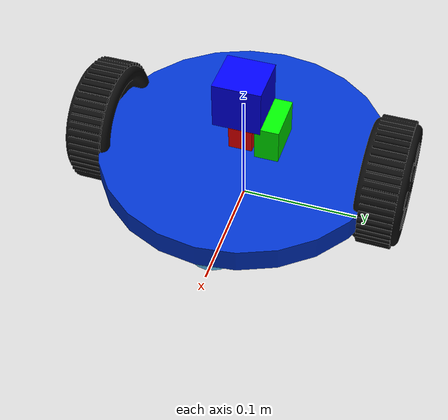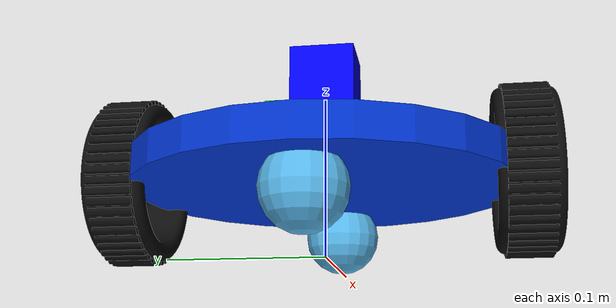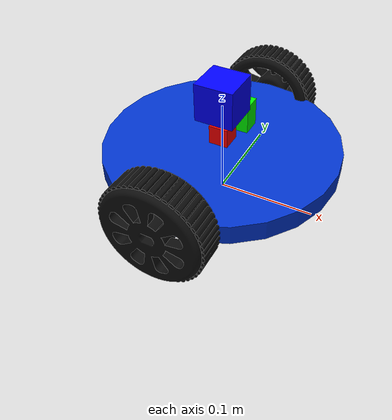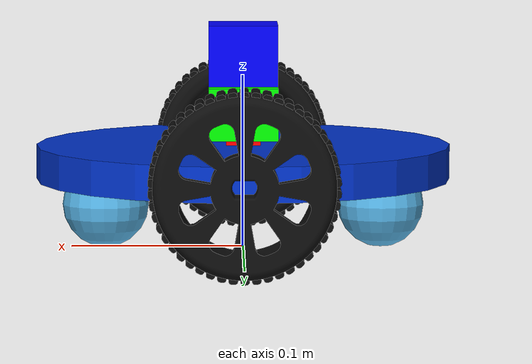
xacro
<?xml version="1.0"?>
<robot xmlns:xacro="http://www.ros.org/wiki/xacro" name="diff_robot">

  <xacro:include filename="$(find diff_robot_description)/urdf/diff_robot_description.gazebo"/>

  <link name="base_footprint">
  </link>

    <!-- origen del sistema de referencia del robot-->
  <joint name="base_joint" type="fixed">
    <parent link="base_footprint"/>
    <child link="base_link"/>
    <origin xyz="0.0 0 0.05" rpy="0 0 0"/>
  </joint>

 <!-- cuerpo del robot robot-->
  <link name="base_link">
    <inertial>
      <origin xyz="0 0 0" rpy="0 0 0"/>
      <mass value="5.0"/>
      <!-- Inercia aproximada para un cilindro pequeño -->
      <inertia
        ixx="0.1" ixy="0.0" ixz="0.0"
        iyy="0.1" iyz="0.0"
        izz="0.1"/>
    </inertial>

    <visual>
      <origin xyz="0.0 0 0" rpy="0 0 0"/>
      <!-- Cilindro de radio 0.15 m y altura 0.10 m -->
      <geometry>
        <cylinder radius="0.12" length="0.02"/>
      </geometry>
      <material name="blue">
        <color rgba="0.0 0.2 0.8 1.0"/>
      </material>
    </visual>

    <collision>
      <origin xyz="0.0 0 0" rpy="0 0 0"/>
      <geometry>
        <cylinder radius="0.12" length="0.02"/>
      </geometry>
    </collision>

       <collision name='rear_caster_collision'>
      <origin xyz="-0.08 0 -0.025" rpy=" 0 0 0"/>
      <geometry>
        <sphere radius="0.025"/>
      </geometry>
    </collision>

    <visual name='rear_caster_visual'>
      <origin xyz="-0.08 0 -0.025" rpy=" 0 0 0"/>
      <geometry>
        <sphere radius="0.025"/>
      </geometry>
    </visual>

    <collision name='front_caster_collision'>
      <origin xyz="0.08 0 -0.025" rpy=" 0 0 0"/>
      <geometry>
        <sphere radius="0.025"/>
      </geometry>
    </collision>

    <visual name='front_caster_visual'>
      <origin xyz="0.08 0 -0.025" rpy=" 0 0 0"/>
      <geometry>
        <sphere radius="0.025"/>
      </geometry>
    </visual>
  </link>

  <!-- Rueda izquierda -->
  <link name="left_wheel_link">
    <inertial>
      <origin xyz="0 0 0" rpy="0 0 0"/>
      <mass value="0.5"/>
      <inertia
        ixx="0.01" ixy="0.0" ixz="0.0"
        iyy="0.01" iyz="0.0"
        izz="0.01"/>
    </inertial>

    <visual>
      <origin xyz="0 0 0" rpy="0 1.570796 0"/>
      <!-- Cilindro alineado con el eje Z (giro alrededor de Z) -->
      <geometry>
        <mesh filename="file://$(find diff_robot_description)/meshes/wheel.stl" scale="0.0025 0.0025 0.0025"/>
      </geometry>
      <material name="black">
        <color rgba="0.05 0.05 0.05 1.0"/>
      </material>
    </visual>

    <collision>
      <origin xyz="0 0 0" rpy="0 0 0"/>
      <geometry>
        <cylinder radius="0.05" length="0.02"/>
      </geometry>
    </collision>
  </link>

  <!-- Rueda derecha -->
  <link name="right_wheel_link">
    <inertial>
      <origin xyz="0 0 0" rpy="0 0 0"/>
      <mass value="0.5"/>
      <inertia
        ixx="0.01" ixy="0.0" ixz="0.0"
        iyy="0.01" iyz="0.0"
        izz="0.01"/>
    </inertial>

    <visual>
      <origin xyz="0 0 0" rpy="0 -1.570796 0"/>
      <geometry>
        <mesh filename="file://$(find diff_robot_description)/meshes/wheel.stl" scale="0.0025 0.0025 0.0025"/>
      </geometry>
      <material name="black">
        <color rgba="0.05 0.05 0.05 1.0"/>
      </material>
    </visual>

    <collision>
      <origin xyz="0 0 0" rpy="0 0 0"/>
      <geometry>
        <cylinder radius="0.05" length="0.02"/>
      </geometry>
    </collision>
  </link>

  <!-- Joint rueda izquierda -->
  <joint name="left_wheel_joint" type="continuous">
    <parent link="base_link"/>
    <child link="left_wheel_link"/>
    <!-- Lateral a la izquierda -->
    <origin xyz="0.0 0.14 0.0" rpy="-1.570796 0 0"/>
    <!-- Giro en torno al eje Z -->
    <axis xyz="0 0 1"/>
  </joint>

  <!-- Joint rueda derecha -->
  <joint name="right_wheel_joint" type="continuous">
    <parent link="base_link"/>
    <child link="right_wheel_link"/>
    <!-- Lateral a la derecha -->
    <origin xyz="0.0 -0.14 0.0" rpy="-1.570796 0 0"/>
    <!-- Giro en torno al eje Z -->
    <axis xyz="0 0 1"/>
  </joint>

    <!-- IMU -->
    <link
    name="imu_link">
    <inertial>
      <origin
        xyz="0 0 0"
        rpy="0 0 0" />
      <mass
        value="0.01" />
      <inertia
        ixx="0.0001"
        ixy="0.0001"
        ixz="0.0001"
        iyy="0.0001"
        iyz="0.0001"
        izz="0.0001" />
    </inertial>
    <visual>
      <origin
        xyz="0 0 0"
        rpy="0 0 0" />

      <geometry>
        <box size="0.02 0.02 0.02"/>
      </geometry>

      <material
        name="">
        <color
          rgba="1.0 0.0 0.0 1" />
      </material>
    </visual>
    <collision>
      <origin
        xyz="0 0 0"
        rpy="0 0 0" />
        <geometry><box size="0.02 0.02 0.02"/>
        <box size="0.02 0.02 0.02"/>
      </geometry>

    </collision>
  </link>

  <joint
    name="imu_frame_Joint"
    type="fixed">
    <origin
      xyz="0.0 0.0 0.02"
      rpy="0 0 0" />
    <parent
      link="base_link" />
    <child
      link="imu_link" />
  </joint>

  <!-- CAMERA -->
  <link name="camera_link">
    <inertial>
      <origin
        xyz="0 0 0"
        rpy="0 0 0" />
      <mass
        value="0.09" />
      <inertia
        ixx="0.001"
        ixy="0.001"
        ixz="0.001"
        iyy="0.001"
        iyz="0.001"
        izz="0.001" />
    </inertial>
    <visual>
      <origin xyz="0 0 0" rpy="0 0 0" />
      <geometry>
         <box size="0.04 0.02 0.03"/>
      </geometry>
      <material
        name="green">
        <color
          rgba="0.0 1.0 0.0 1.0" />
      </material>
    </visual>
    <collision>
      <origin
        xyz="0 0 0"
        rpy="0 0 0" />
      <geometry>
         <box size="0.04 0.02 0.03"/>
      </geometry>
    </collision>
  </link>

  <joint
    name="camera_joint"
    type="fixed">
    <origin
      xyz="0 0.025 0.03"
      rpy="0 0 0" />
    <parent
      link="base_link" />
    <child
      link="camera_link" />
  </joint>

    <!-- LIDAR -->

    <link
    name="lidar_link">
    <inertial>
      <origin
        xyz="0 0 0"  rpy="0 0 0" />
      <mass
        value="0.1" />
      <inertia
        ixx="0.001"
        ixy="0.001"
        ixz="0.001"
        iyy="0.001"
        iyz="0.001"
        izz="0.001" />
    </inertial>
    <visual>
      <origin xyz="0 0 0" rpy="0 0 0" />

      <geometry>
        <box size="0.04 0.04 0.04"/>
      </geometry>

      <material
        name="blue">
        <color rgba="0 0 1 1" />
      </material>
    </visual>
    <collision>
      <origin xyz="0 0 0"  rpy="0 0 0" />

      <geometry>
        <box size="0.04 0.04 0.04"/>
      </geometry>

    </collision>
  </link>

  <joint
    name="lidar_joint"
    type="fixed">
    <origin
      xyz="0 0 0.06" rpy="0 0 0" />
    <parent
      link="base_link" />
    <child
      link="lidar_link" />
  </joint>

</robot>
